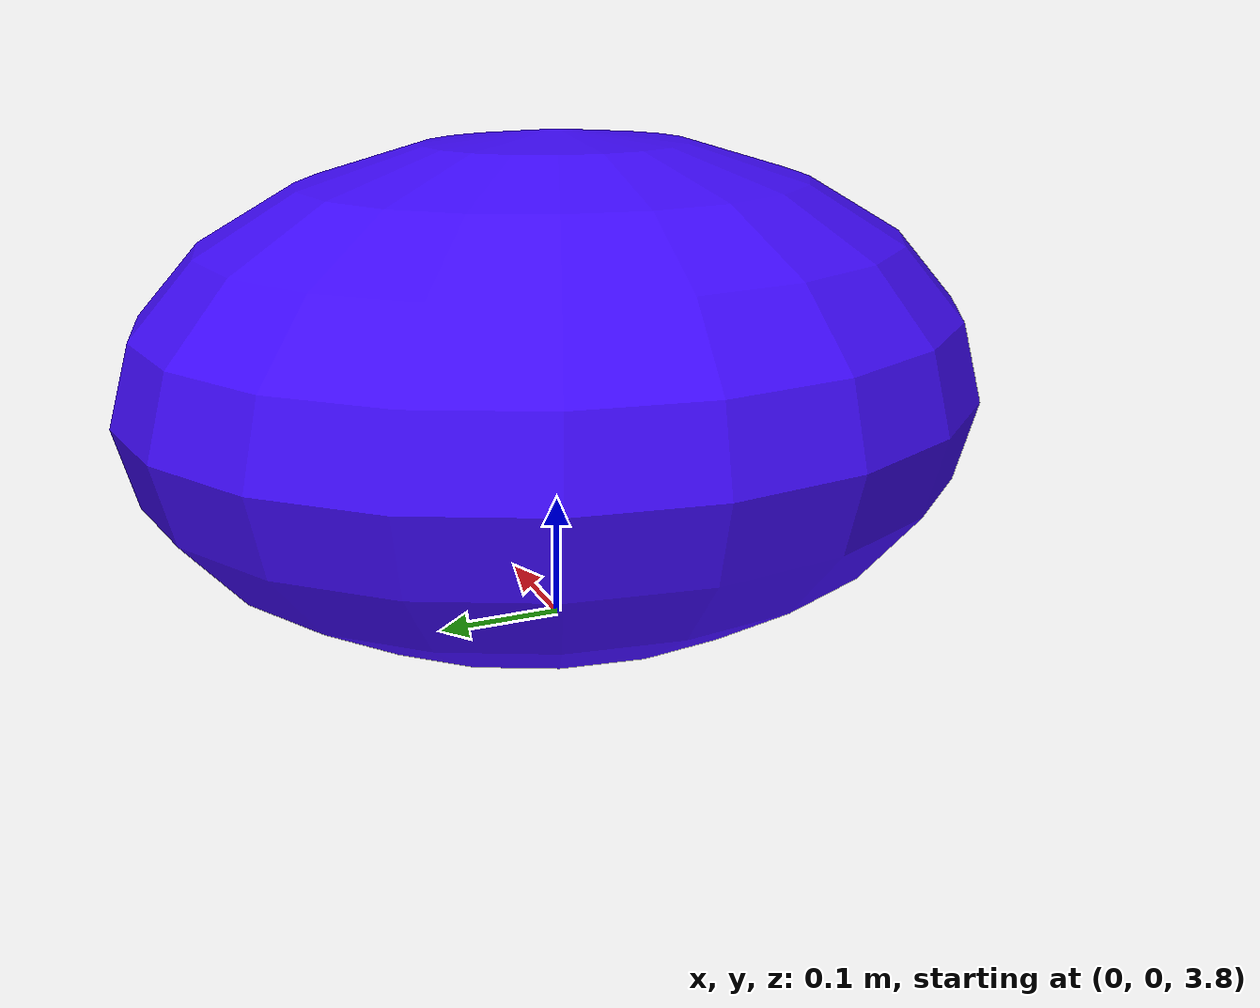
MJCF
<mujoco model="unnamed_model">
  <option timestep="0.01"/>
  <visual>
    <headlight ambient="0.5 0.5 0.5"/>
  </visual>
  <default>
    <default class="/"/>
  </default>
  <worldbody>
    <light name="//unnamed_light_0" class="/" pos="0 0 3" dir="0 0 -1" diffuse="0.5 0.5 0.5"/>
    <geom name="//unnamed_geom_0" class="/" type="plane" size="50 50 0.10000000000000001"/>
    <body name="//unnamed_body_0" pos="0 0 4">
      <joint name="//unnamed_joint_0" class="/" type="free"/>
      <geom name="//unnamed_geom_1" class="/" type="ellipsoid" size="0.29425776278815263 0.34262506358439171 0.20022717632945253" rgba="0.247 0.035000000000000003 0.97999999999999998 1" pos="0 0 0"/>
    </body>
  </worldbody>
</mujoco>
